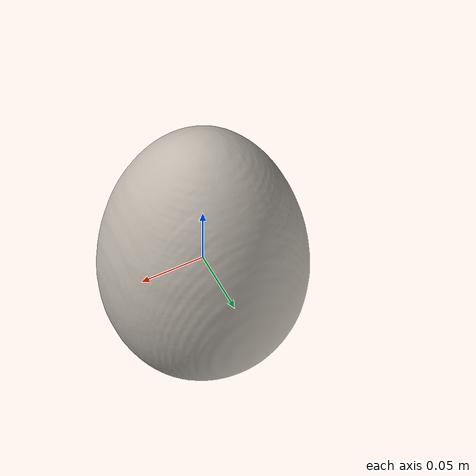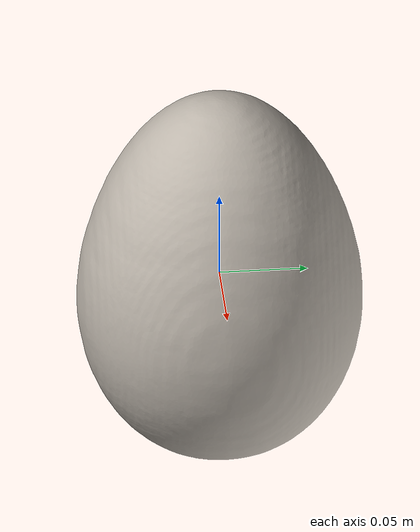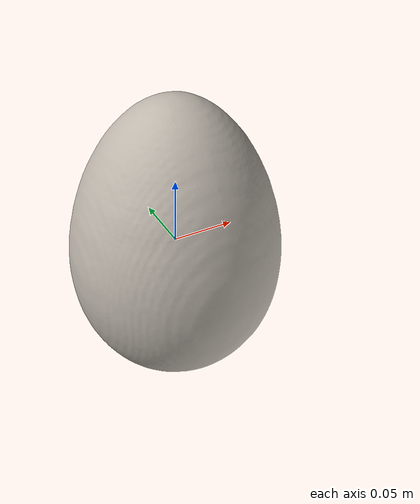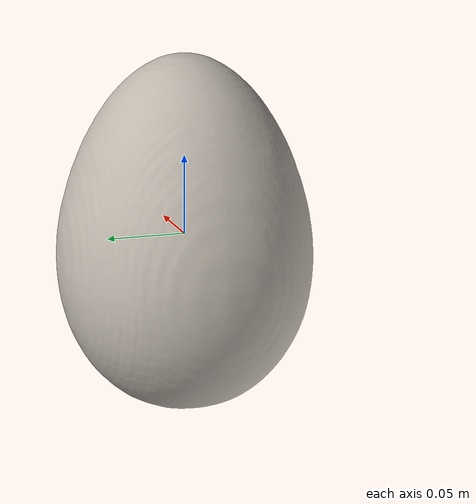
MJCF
<mujoco model="tray_6">
  <asset>
    <mesh file="visual/model_normalized_0.obj" name="model_normalized_0_vis" scale="0.2250000000000001 0.2250000000000001 0.2250000000000001" refquat="0.7071067811865475 0.0 0.0 0.7071067811865475"/>
    <mesh file="collision/model_normalized_collision_22.obj" name="model_normalized_collision_22._coll" scale="0.2250000000000001 0.2250000000000001 0.2250000000000001" refquat="0.7071067811865475 0.0 0.0 0.7071067811865475"/>
    <mesh file="collision/model_normalized_collision_23.obj" name="model_normalized_collision_23._coll" scale="0.2250000000000001 0.2250000000000001 0.2250000000000001" refquat="0.7071067811865475 0.0 0.0 0.7071067811865475"/>
    <mesh file="collision/model_normalized_collision_21.obj" name="model_normalized_collision_21._coll" scale="0.2250000000000001 0.2250000000000001 0.2250000000000001" refquat="0.7071067811865475 0.0 0.0 0.7071067811865475"/>
    <mesh file="collision/model_normalized_collision_20.obj" name="model_normalized_collision_20._coll" scale="0.2250000000000001 0.2250000000000001 0.2250000000000001" refquat="0.7071067811865475 0.0 0.0 0.7071067811865475"/>
    <mesh file="collision/model_normalized_collision_24.obj" name="model_normalized_collision_24._coll" scale="0.2250000000000001 0.2250000000000001 0.2250000000000001" refquat="0.7071067811865475 0.0 0.0 0.7071067811865475"/>
    <mesh file="collision/model_normalized_collision_30.obj" name="model_normalized_collision_30._coll" scale="0.2250000000000001 0.2250000000000001 0.2250000000000001" refquat="0.7071067811865475 0.0 0.0 0.7071067811865475"/>
    <mesh file="collision/model_normalized_collision_18.obj" name="model_normalized_collision_18._coll" scale="0.2250000000000001 0.2250000000000001 0.2250000000000001" refquat="0.7071067811865475 0.0 0.0 0.7071067811865475"/>
    <mesh file="collision/model_normalized_collision_19.obj" name="model_normalized_collision_19._coll" scale="0.2250000000000001 0.2250000000000001 0.2250000000000001" refquat="0.7071067811865475 0.0 0.0 0.7071067811865475"/>
    <mesh file="collision/model_normalized_collision_31.obj" name="model_normalized_collision_31._coll" scale="0.2250000000000001 0.2250000000000001 0.2250000000000001" refquat="0.7071067811865475 0.0 0.0 0.7071067811865475"/>
    <mesh file="collision/model_normalized_collision_25.obj" name="model_normalized_collision_25._coll" scale="0.2250000000000001 0.2250000000000001 0.2250000000000001" refquat="0.7071067811865475 0.0 0.0 0.7071067811865475"/>
    <mesh file="collision/model_normalized_collision_27.obj" name="model_normalized_collision_27._coll" scale="0.2250000000000001 0.2250000000000001 0.2250000000000001" refquat="0.7071067811865475 0.0 0.0 0.7071067811865475"/>
    <mesh file="collision/model_normalized_collision_26.obj" name="model_normalized_collision_26._coll" scale="0.2250000000000001 0.2250000000000001 0.2250000000000001" refquat="0.7071067811865475 0.0 0.0 0.7071067811865475"/>
    <mesh file="collision/model_normalized_collision_9.obj" name="model_normalized_collision_9._coll" scale="0.2250000000000001 0.2250000000000001 0.2250000000000001" refquat="0.7071067811865475 0.0 0.0 0.7071067811865475"/>
    <mesh file="collision/model_normalized_collision_8.obj" name="model_normalized_collision_8._coll" scale="0.2250000000000001 0.2250000000000001 0.2250000000000001" refquat="0.7071067811865475 0.0 0.0 0.7071067811865475"/>
    <mesh file="collision/model_normalized_collision_6.obj" name="model_normalized_collision_6._coll" scale="0.2250000000000001 0.2250000000000001 0.2250000000000001" refquat="0.7071067811865475 0.0 0.0 0.7071067811865475"/>
    <mesh file="collision/model_normalized_collision_7.obj" name="model_normalized_collision_7._coll" scale="0.2250000000000001 0.2250000000000001 0.2250000000000001" refquat="0.7071067811865475 0.0 0.0 0.7071067811865475"/>
    <mesh file="collision/model_normalized_collision_5.obj" name="model_normalized_collision_5._coll" scale="0.2250000000000001 0.2250000000000001 0.2250000000000001" refquat="0.7071067811865475 0.0 0.0 0.7071067811865475"/>
    <mesh file="collision/model_normalized_collision_4.obj" name="model_normalized_collision_4._coll" scale="0.2250000000000001 0.2250000000000001 0.2250000000000001" refquat="0.7071067811865475 0.0 0.0 0.7071067811865475"/>
    <mesh file="collision/model_normalized_collision_0.obj" name="model_normalized_collision_0._coll" scale="0.2250000000000001 0.2250000000000001 0.2250000000000001" refquat="0.7071067811865475 0.0 0.0 0.7071067811865475"/>
    <mesh file="collision/model_normalized_collision_1.obj" name="model_normalized_collision_1._coll" scale="0.2250000000000001 0.2250000000000001 0.2250000000000001" refquat="0.7071067811865475 0.0 0.0 0.7071067811865475"/>
    <mesh file="collision/model_normalized_collision_3.obj" name="model_normalized_collision_3._coll" scale="0.2250000000000001 0.2250000000000001 0.2250000000000001" refquat="0.7071067811865475 0.0 0.0 0.7071067811865475"/>
    <mesh file="collision/model_normalized_collision_2.obj" name="model_normalized_collision_2._coll" scale="0.2250000000000001 0.2250000000000001 0.2250000000000001" refquat="0.7071067811865475 0.0 0.0 0.7071067811865475"/>
    <mesh file="collision/model_normalized_collision_17.obj" name="model_normalized_collision_17._coll" scale="0.2250000000000001 0.2250000000000001 0.2250000000000001" refquat="0.7071067811865475 0.0 0.0 0.7071067811865475"/>
    <mesh file="collision/model_normalized_collision_16.obj" name="model_normalized_collision_16._coll" scale="0.2250000000000001 0.2250000000000001 0.2250000000000001" refquat="0.7071067811865475 0.0 0.0 0.7071067811865475"/>
    <mesh file="collision/model_normalized_collision_28.obj" name="model_normalized_collision_28._coll" scale="0.2250000000000001 0.2250000000000001 0.2250000000000001" refquat="0.7071067811865475 0.0 0.0 0.7071067811865475"/>
    <mesh file="collision/model_normalized_collision_14.obj" name="model_normalized_collision_14._coll" scale="0.2250000000000001 0.2250000000000001 0.2250000000000001" refquat="0.7071067811865475 0.0 0.0 0.7071067811865475"/>
    <mesh file="collision/model_normalized_collision_15.obj" name="model_normalized_collision_15._coll" scale="0.2250000000000001 0.2250000000000001 0.2250000000000001" refquat="0.7071067811865475 0.0 0.0 0.7071067811865475"/>
    <mesh file="collision/model_normalized_collision_29.obj" name="model_normalized_collision_29._coll" scale="0.2250000000000001 0.2250000000000001 0.2250000000000001" refquat="0.7071067811865475 0.0 0.0 0.7071067811865475"/>
    <mesh file="collision/model_normalized_collision_11.obj" name="model_normalized_collision_11._coll" scale="0.2250000000000001 0.2250000000000001 0.2250000000000001" refquat="0.7071067811865475 0.0 0.0 0.7071067811865475"/>
    <mesh file="collision/model_normalized_collision_10.obj" name="model_normalized_collision_10._coll" scale="0.2250000000000001 0.2250000000000001 0.2250000000000001" refquat="0.7071067811865475 0.0 0.0 0.7071067811865475"/>
    <mesh file="collision/model_normalized_collision_12.obj" name="model_normalized_collision_12._coll" scale="0.2250000000000001 0.2250000000000001 0.2250000000000001" refquat="0.7071067811865475 0.0 0.0 0.7071067811865475"/>
    <mesh file="collision/model_normalized_collision_13.obj" name="model_normalized_collision_13._coll" scale="0.2250000000000001 0.2250000000000001 0.2250000000000001" refquat="0.7071067811865475 0.0 0.0 0.7071067811865475"/>
    <texture type="2d" name="image0" file="visual/image0.png"/>
    <material name="BakingDish" texture="image0" specular="0.5" shininess="0.25"/>
  </asset>
  <default>
    <default class="region">
      <geom group="1" conaffinity="0" contype="0" rgba="0 1 0 0"/>
    </default>
  </default>
  <worldbody>
    <body>
      <body name="object">
        <geom solimp="0.998 0.998 0.001" solref="0.001 1" density="100" friction="0.95 0.3 0.1" type="mesh" mesh="model_normalized_0_vis" conaffinity="0" contype="0" group="1" material="BakingDish"/>
        <geom solimp="0.998 0.998 0.001" solref="0.001 1" density="100" friction="0.95 0.3 0.1" type="mesh" mesh="model_normalized_collision_22._coll" group="0" rgba="0.8 0.8 0.8 0.0"/>
        <geom solimp="0.998 0.998 0.001" solref="0.001 1" density="100" friction="0.95 0.3 0.1" type="mesh" mesh="model_normalized_collision_23._coll" group="0" rgba="0.8 0.8 0.8 0.0"/>
        <geom solimp="0.998 0.998 0.001" solref="0.001 1" density="100" friction="0.95 0.3 0.1" type="mesh" mesh="model_normalized_collision_21._coll" group="0" rgba="0.8 0.8 0.8 0.0"/>
        <geom solimp="0.998 0.998 0.001" solref="0.001 1" density="100" friction="0.95 0.3 0.1" type="mesh" mesh="model_normalized_collision_20._coll" group="0" rgba="0.8 0.8 0.8 0.0"/>
        <geom solimp="0.998 0.998 0.001" solref="0.001 1" density="100" friction="0.95 0.3 0.1" type="mesh" mesh="model_normalized_collision_24._coll" group="0" rgba="0.8 0.8 0.8 0.0"/>
        <geom solimp="0.998 0.998 0.001" solref="0.001 1" density="100" friction="0.95 0.3 0.1" type="mesh" mesh="model_normalized_collision_30._coll" group="0" rgba="0.8 0.8 0.8 0.0"/>
        <geom solimp="0.998 0.998 0.001" solref="0.001 1" density="100" friction="0.95 0.3 0.1" type="mesh" mesh="model_normalized_collision_18._coll" group="0" rgba="0.8 0.8 0.8 0.0"/>
        <geom solimp="0.998 0.998 0.001" solref="0.001 1" density="100" friction="0.95 0.3 0.1" type="mesh" mesh="model_normalized_collision_19._coll" group="0" rgba="0.8 0.8 0.8 0.0"/>
        <geom solimp="0.998 0.998 0.001" solref="0.001 1" density="100" friction="0.95 0.3 0.1" type="mesh" mesh="model_normalized_collision_31._coll" group="0" rgba="0.8 0.8 0.8 0.0"/>
        <geom solimp="0.998 0.998 0.001" solref="0.001 1" density="100" friction="0.95 0.3 0.1" type="mesh" mesh="model_normalized_collision_25._coll" group="0" rgba="0.8 0.8 0.8 0.0"/>
        <geom solimp="0.998 0.998 0.001" solref="0.001 1" density="100" friction="0.95 0.3 0.1" type="mesh" mesh="model_normalized_collision_27._coll" group="0" rgba="0.8 0.8 0.8 0.0"/>
        <geom solimp="0.998 0.998 0.001" solref="0.001 1" density="100" friction="0.95 0.3 0.1" type="mesh" mesh="model_normalized_collision_26._coll" group="0" rgba="0.8 0.8 0.8 0.0"/>
        <geom solimp="0.998 0.998 0.001" solref="0.001 1" density="100" friction="0.95 0.3 0.1" type="mesh" mesh="model_normalized_collision_9._coll" group="0" rgba="0.8 0.8 0.8 0.0"/>
        <geom solimp="0.998 0.998 0.001" solref="0.001 1" density="100" friction="0.95 0.3 0.1" type="mesh" mesh="model_normalized_collision_8._coll" group="0" rgba="0.8 0.8 0.8 0.0"/>
        <geom solimp="0.998 0.998 0.001" solref="0.001 1" density="100" friction="0.95 0.3 0.1" type="mesh" mesh="model_normalized_collision_6._coll" group="0" rgba="0.8 0.8 0.8 0.0"/>
        <geom solimp="0.998 0.998 0.001" solref="0.001 1" density="100" friction="0.95 0.3 0.1" type="mesh" mesh="model_normalized_collision_7._coll" group="0" rgba="0.8 0.8 0.8 0.0"/>
        <geom solimp="0.998 0.998 0.001" solref="0.001 1" density="100" friction="0.95 0.3 0.1" type="mesh" mesh="model_normalized_collision_5._coll" group="0" rgba="0.8 0.8 0.8 0.0"/>
        <geom solimp="0.998 0.998 0.001" solref="0.001 1" density="100" friction="0.95 0.3 0.1" type="mesh" mesh="model_normalized_collision_4._coll" group="0" rgba="0.8 0.8 0.8 0.0"/>
        <geom solimp="0.998 0.998 0.001" solref="0.001 1" density="100" friction="0.95 0.3 0.1" type="mesh" mesh="model_normalized_collision_0._coll" group="0" rgba="0.8 0.8 0.8 0.0"/>
        <geom solimp="0.998 0.998 0.001" solref="0.001 1" density="100" friction="0.95 0.3 0.1" type="mesh" mesh="model_normalized_collision_1._coll" group="0" rgba="0.8 0.8 0.8 0.0"/>
        <geom solimp="0.998 0.998 0.001" solref="0.001 1" density="100" friction="0.95 0.3 0.1" type="mesh" mesh="model_normalized_collision_3._coll" group="0" rgba="0.8 0.8 0.8 0.0"/>
        <geom solimp="0.998 0.998 0.001" solref="0.001 1" density="100" friction="0.95 0.3 0.1" type="mesh" mesh="model_normalized_collision_2._coll" group="0" rgba="0.8 0.8 0.8 0.0"/>
        <geom solimp="0.998 0.998 0.001" solref="0.001 1" density="100" friction="0.95 0.3 0.1" type="mesh" mesh="model_normalized_collision_17._coll" group="0" rgba="0.8 0.8 0.8 0.0"/>
        <geom solimp="0.998 0.998 0.001" solref="0.001 1" density="100" friction="0.95 0.3 0.1" type="mesh" mesh="model_normalized_collision_16._coll" group="0" rgba="0.8 0.8 0.8 0.0"/>
        <geom solimp="0.998 0.998 0.001" solref="0.001 1" density="100" friction="0.95 0.3 0.1" type="mesh" mesh="model_normalized_collision_28._coll" group="0" rgba="0.8 0.8 0.8 0.0"/>
        <geom solimp="0.998 0.998 0.001" solref="0.001 1" density="100" friction="0.95 0.3 0.1" type="mesh" mesh="model_normalized_collision_14._coll" group="0" rgba="0.8 0.8 0.8 0.0"/>
        <geom solimp="0.998 0.998 0.001" solref="0.001 1" density="100" friction="0.95 0.3 0.1" type="mesh" mesh="model_normalized_collision_15._coll" group="0" rgba="0.8 0.8 0.8 0.0"/>
        <geom solimp="0.998 0.998 0.001" solref="0.001 1" density="100" friction="0.95 0.3 0.1" type="mesh" mesh="model_normalized_collision_29._coll" group="0" rgba="0.8 0.8 0.8 0.0"/>
        <geom solimp="0.998 0.998 0.001" solref="0.001 1" density="100" friction="0.95 0.3 0.1" type="mesh" mesh="model_normalized_collision_11._coll" group="0" rgba="0.8 0.8 0.8 0.0"/>
        <geom solimp="0.998 0.998 0.001" solref="0.001 1" density="100" friction="0.95 0.3 0.1" type="mesh" mesh="model_normalized_collision_10._coll" group="0" rgba="0.8 0.8 0.8 0.0"/>
        <geom solimp="0.998 0.998 0.001" solref="0.001 1" density="100" friction="0.95 0.3 0.1" type="mesh" mesh="model_normalized_collision_12._coll" group="0" rgba="0.8 0.8 0.8 0.0"/>
        <geom solimp="0.998 0.998 0.001" solref="0.001 1" density="100" friction="0.95 0.3 0.1" type="mesh" mesh="model_normalized_collision_13._coll" group="0" rgba="0.8 0.8 0.8 0.0"/>
        <geom class="region" name="reg_bbox" type="box" pos="4.715999999996975e-06 0.0 -1.1249999994078497e-09" size="0.06669814275000002 0.11059999875000004 0.017846128125000006"/>
      </body>
    </body>
  </worldbody>
</mujoco>
